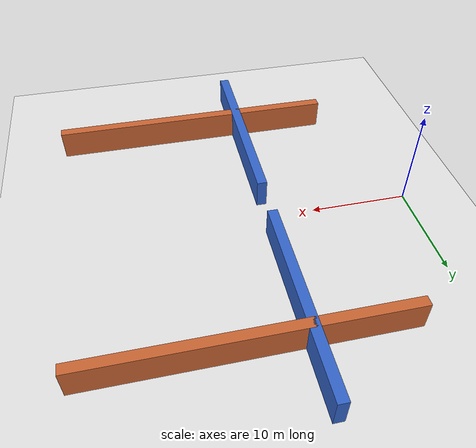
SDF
<?xml version="1.0" ?>
<sdf version="1.8">
  <world name="tall_wall_world">
    <!-- PHYSICS -->
    <physics name="default_physics" type="ode">
      <max_step_size>0.002</max_step_size>
      <real_time_factor>1.0</real_time_factor>
      <real_time_update_rate>500</real_time_update_rate>
    </physics>

    <!-- PLUGINS -->
    <plugin filename="gz-sim-physics-system" name="gz::sim::systems::Physics" />
    <plugin filename="gz-sim-sensors-system" name="gz::sim::systems::Sensors">
        <render_engine>ogre2</render_engine>
    </plugin>
    <plugin filename="gz-sim-user-commands-system" name="gz::sim::systems::UserCommands" />
    <plugin filename="gz-sim-scene-broadcaster-system" name="gz::sim::systems::SceneBroadcaster" />

    <light type="directional" name="sun"><pose>0 0 10 0 0 0</pose></light>

    <!-- THE BRIGHT WHITE GROUND PLANE -->
    <model name="ground_plane">
      <static>true</static>
      <link name="link">
        <collision name="collision">
          <geometry><plane><normal>0 0 1</normal><size>100 100</size></plane></geometry>
        </collision>
        <visual name="visual">
          <geometry><plane><normal>0 0 1</normal><size>100 100</size></plane></geometry>
          <!-- Changed ambient and diffuse to near-white -->
          <material>
            <ambient>0.9 0.9 0.9 1</ambient>
            <diffuse>0.9 0.9 0.9 1</diffuse>
          </material>
        </visual>
      </link>
      <pose>0 0 0 0 0 0</pose>
    </model>

    <!-- THE TACTICAL MAZE WALLS (You can move these)   -->

    <!-- FRONT WALL: Split in the middle with a 4m gap -->
    <model name="wall_front_left">
      <static>true</static>
      <pose>15 12 1.5 0 0 0</pose>
      <link name="link">
        <collision name="collision"><geometry><box><size>1.0 20.0 3.0</size></box></geometry></collision>
        <visual name="visual"><geometry><box><size>1.0 20.0 3.0</size></box></geometry><material><ambient>0.2 0.4 0.8 1</ambient></material></visual>
      </link>
    </model>

    <model name="wall_front_right">
      <static>true</static>
      <pose>15 -12 1.5 0 0 0</pose>
      <link name="link">
        <collision name="collision"><geometry><box><size>1.0 20.0 3.0</size></box></geometry></collision>
        <visual name="visual"><geometry><box><size>1.0 20.0 3.0</size></box></geometry><material><ambient>0.2 0.4 0.8 1</ambient></material></visual>
      </link>
    </model>

    <!-- LEFT WALL: Block the left flank -->
    <model name="wall_left_flank">
      <static>true</static>
      <pose>20 15 1.5 0 0 1.57</pose> <!-- Rotated 90 degrees -->
      <link name="link">
        <collision name="collision"><geometry><box><size>1.0 30.0 3.0</size></box></geometry></collision>
        <visual name="visual"><geometry><box><size>1.0 30.0 3.0</size></box></geometry><material><ambient>0.8 0.4 0.2 1</ambient></material></visual>
      </link>
    </model>

    <!-- RIGHT WALL: Block the right flank -->
    <model name="wall_right_flank">
      <static>true</static>
      <pose>20 -15 1.5 0 0 1.57</pose> <!-- Rotated 90 degrees -->
      <link name="link">
        <collision name="collision"><geometry><box><size>1.0 30.0 3.0</size></box></geometry></collision>
        <visual name="visual"><geometry><box><size>1.0 30.0 3.0</size></box></geometry><material><ambient>0.8 0.4 0.2 1</ambient></material></visual>
      </link>
    </model>

  </world>
</sdf>
